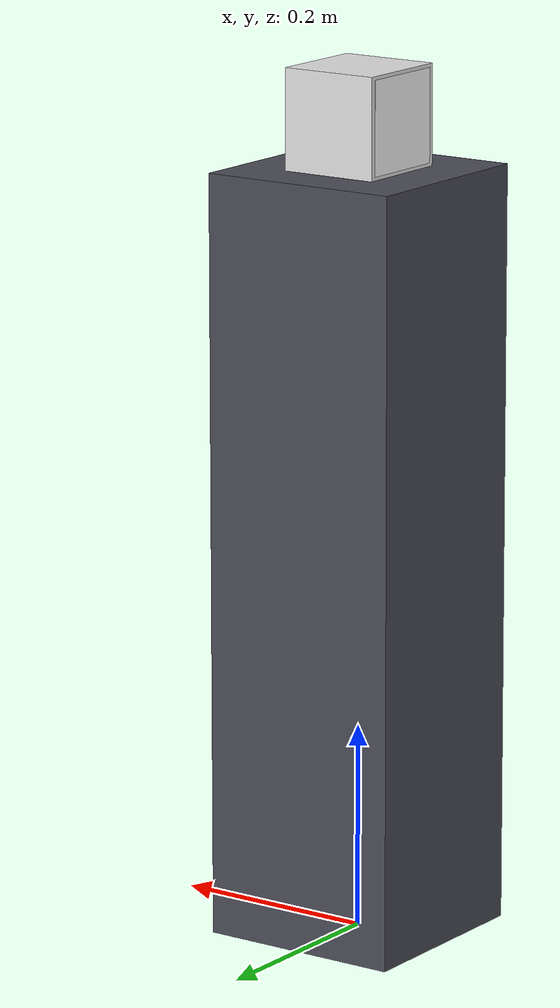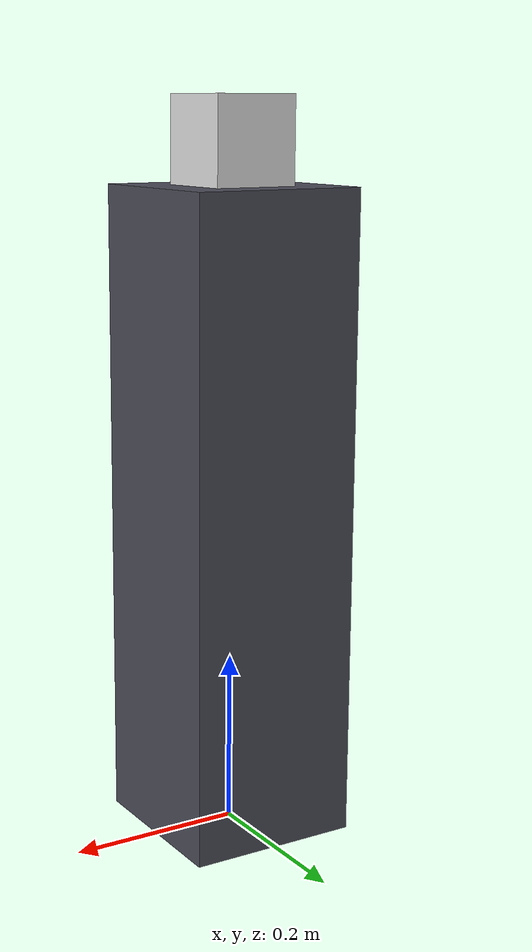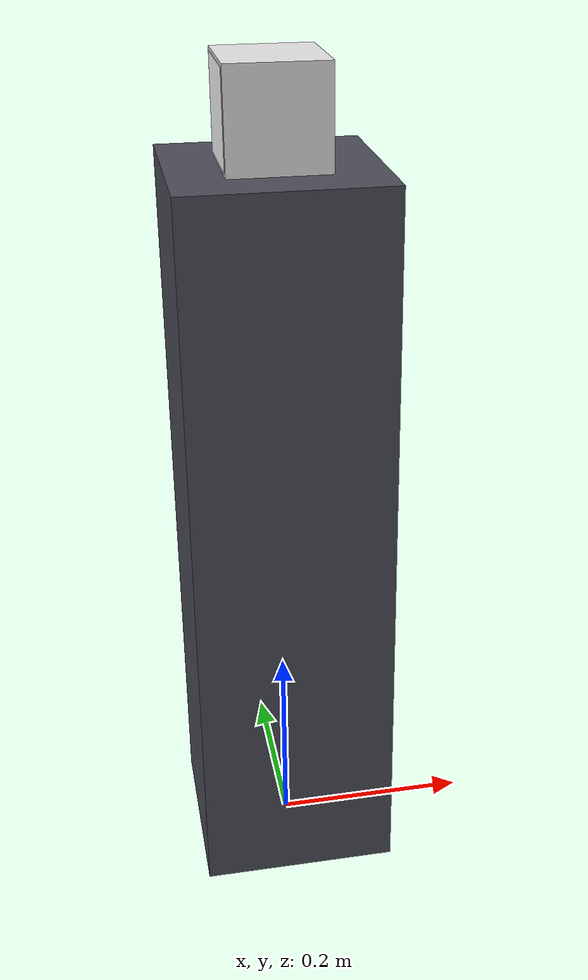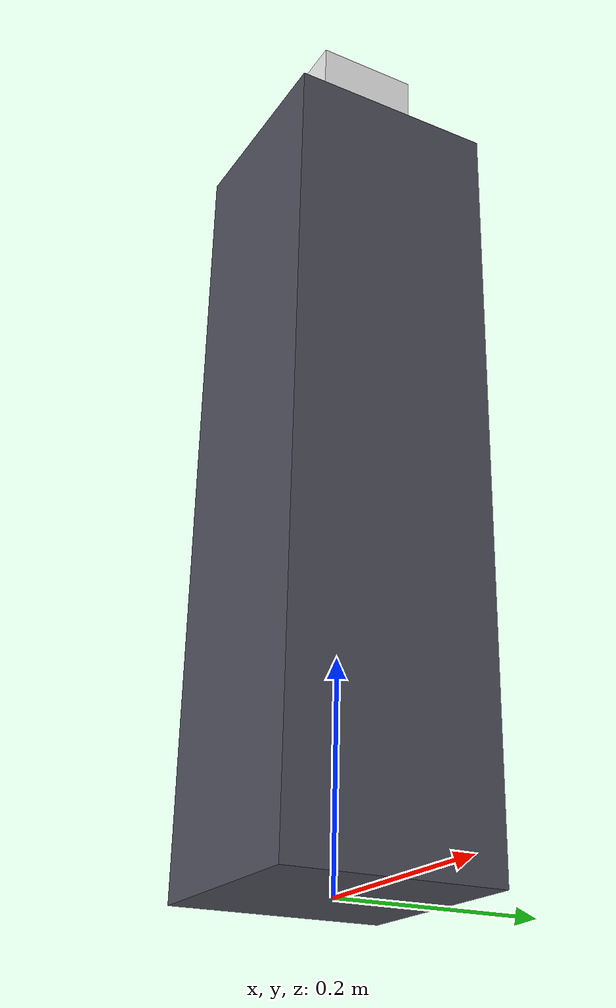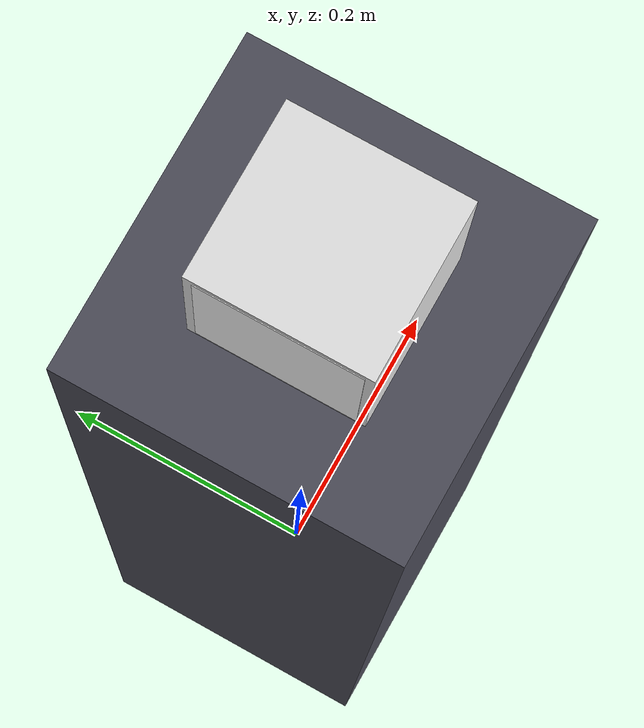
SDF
<?xml version="1.0"?>
<sdf version="1.9">
  <model name="apriltag_target">
    <static>true</static>
    <!-- One link: with two links in this static model Gazebo placed the cube inside the pedestal -->
    <link name="target">

      <collision name="pedestal_collision">
        <pose>0 0 0.37075 0 0 0</pose>
        <geometry><box><size>0.2 0.2 0.7415</size></box></geometry>
      </collision>
      <visual name="pedestal">
        <pose>0 0 0.37075 0 0 0</pose>
        <geometry><box><size>0.2 0.2 0.7415</size></box></geometry>
        <material>
          <ambient>0.3 0.3 0.35 1</ambient>
          <diffuse>0.3 0.3 0.35 1</diffuse>
        </material>
      </visual>

      <!-- Cube matching dexterity/config/cad_models/cube_at_rl2.cao -->
      <collision name="cube_collision">
        <pose>0 0 0.79 0 0 0</pose>
        <geometry><box><size>0.097 0.1 0.097</size></box></geometry>
      </collision>
      <visual name="cube">
        <pose>0 0 0.79 0 0 0</pose>
        <geometry><box><size>0.097 0.1 0.097</size></box></geometry>
        <material>
          <ambient>0.9 0.9 0.9 1</ambient>
          <diffuse>0.9 0.9 0.9 1</diffuse>
        </material>
      </visual>

      <!-- Tag on the -X face of the cube: a thin box whose +Z face is turned towards -X.
           0.09 m texture = 10 tag cells, so the black square (8 cells) is 0.072 m. -->
      <visual name="tag">
        <pose>-0.04875 0 0.79 0 -1.5707963 0</pose>
        <geometry><box><size>0.09 0.09 0.0005</size></box></geometry>
        <material>
          <ambient>1 1 1 1</ambient>
          <diffuse>1 1 1 1</diffuse>
          <specular>0 0 0 1</specular>
          <pbr>
            <metal>
              <albedo_map>model://apriltag_target/materials/textures/tag36_11_00000.png</albedo_map>
              <metalness>0</metalness>
              <roughness>1</roughness>
            </metal>
          </pbr>
        </material>
      </visual>
    </link>
  </model>
</sdf>
